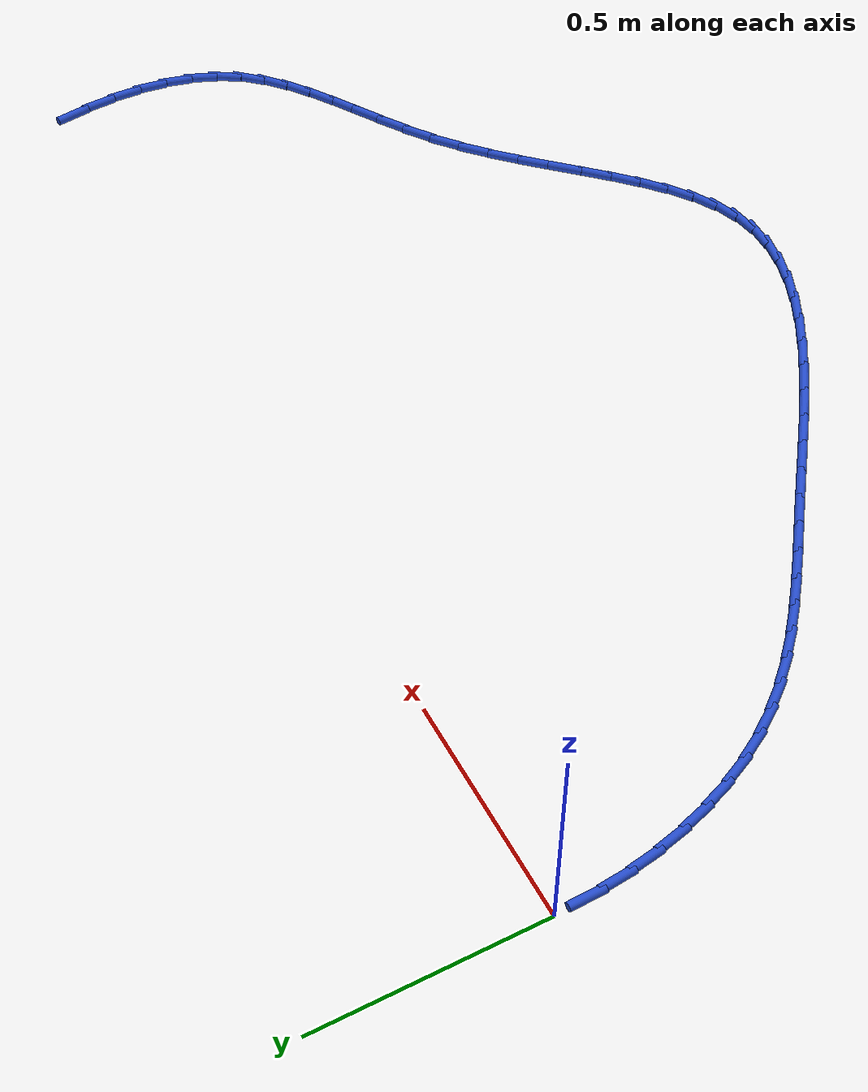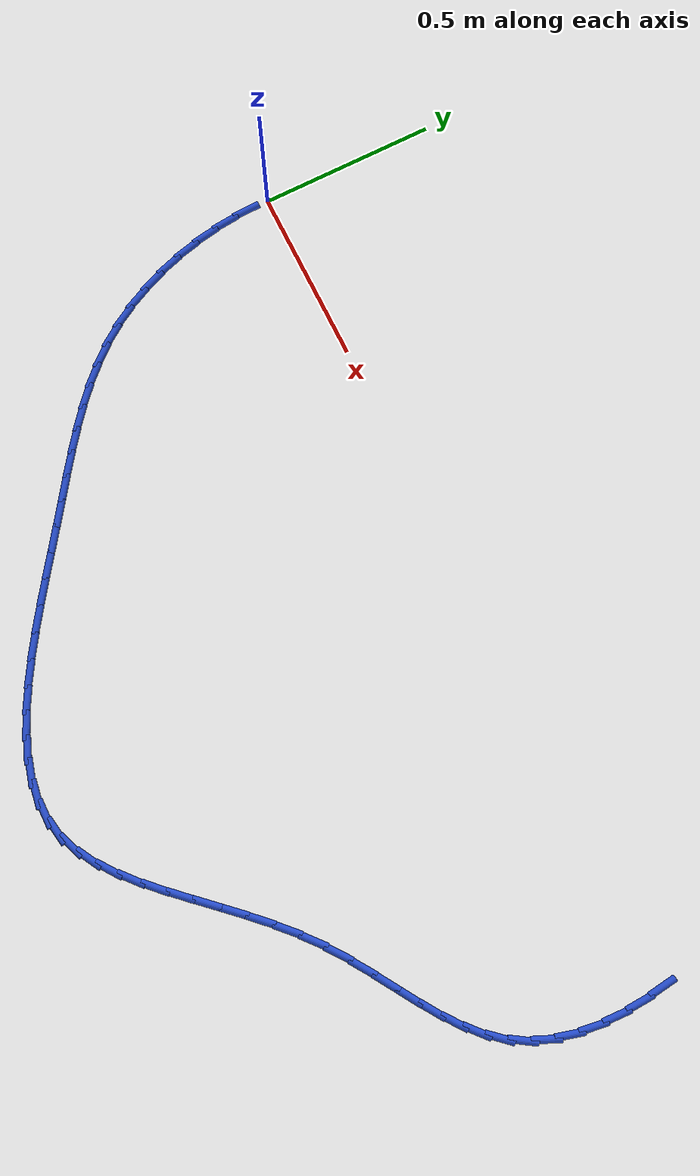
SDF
<sdf version="1.6">
 <world name="default">
  <model name="ground_plane">
   <static>1</static>
   <link name="link">
    <collision name="collision">
     <geometry><plane><normal>0 0 1</normal><size>100 100</size></plane></geometry>
     <surface><friction><ode><mu>100</mu><mu2>50</mu2></ode></friction></surface>
    </collision>
    <visual name="visual">
     <cast_shadows>0</cast_shadows>
     <geometry><plane><normal>0 0 1</normal><size>100 100</size></plane></geometry>
     <material>
      <script><uri>file://media/materials/scripts/gazebo.material</uri><name>Gazebo/WhiteGlow</name></script>
     </material>
    </visual>
   </link>
  </model>
  <model name="line">
   <link name="link_54">
    <pose>2.371682854689119 -0.04774600827914343 0.01 0 1.57 -1.451665395589997</pose>
    <collision name="collision">
     <geometry><cylinder><radius>0.01</radius><length>0.08</length></cylinder></geometry>
    </collision>
    <visual name="visual">
     <material>
      <script><name>Gazebo/Blue</name><uri>file://media/materials/scripts/gazebo.material</uri></script>
     </material>
     <geometry><cylinder><radius>0.01</radius><length>0.08</length></cylinder></geometry>
    </visual>
   </link>
   <link name="link_55">
    <pose>2.3799388379606223 -0.11671961058493745 0.01 0 1.57 -1.5286415477636637</pose>
    <collision name="collision">
     <geometry><cylinder><radius>0.01</radius><length>0.08</length></cylinder></geometry>
    </collision>
    <visual name="visual">
     <material>
      <script><name>Gazebo/Blue</name><uri>file://media/materials/scripts/gazebo.material</uri></script>
     </material>
     <geometry><cylinder><radius>0.01</radius><length>0.08</length></cylinder></geometry>
    </visual>
   </link>
   <link name="link_56">
    <pose>2.3827754528821576 -0.18397021756264856 0.01 0 1.57 1.523438531681051</pose>
    <collision name="collision">
     <geometry><cylinder><radius>0.01</radius><length>0.08</length></cylinder></geometry>
    </collision>
    <visual name="visual">
     <material>
      <script><name>Gazebo/Blue</name><uri>file://media/materials/scripts/gazebo.material</uri></script>
     </material>
     <geometry><cylinder><radius>0.01</radius><length>0.08</length></cylinder></geometry>
    </visual>
   </link>
   <link name="link_57">
    <pose>2.379700760778411 -0.2488464043236427 0.01 0 1.57 1.4187393260869767</pose>
    <collision name="collision">
     <geometry><cylinder><radius>0.01</radius><length>0.08</length></cylinder></geometry>
    </collision>
    <visual name="visual">
     <material>
      <script><name>Gazebo/Blue</name><uri>file://media/materials/scripts/gazebo.material</uri></script>
     </material>
     <geometry><cylinder><radius>0.01</radius><length>0.08</length></cylinder></geometry>
    </visual>
   </link>
   <link name="link_58">
    <pose>2.370222822974068 -0.3106967459792827 0.01 0 1.57 1.296438589700294</pose>
    <collision name="collision">
     <geometry><cylinder><radius>0.01</radius><length>0.08</length></cylinder></geometry>
    </collision>
    <visual name="visual">
     <material>
      <script><name>Gazebo/Blue</name><uri>file://media/materials/scripts/gazebo.material</uri></script>
     </material>
     <geometry><cylinder><radius>0.01</radius><length>0.08</length></cylinder></geometry>
    </visual>
   </link>
   <link name="link_59">
    <pose>2.3538497007938135 -0.3688698176409346 0.01 0 1.57 1.1552207023727814</pose>
    <collision name="collision">
     <geometry><cylinder><radius>0.01</radius><length>0.08</length></cylinder></geometry>
    </collision>
    <visual name="visual">
     <material>
      <script><name>Gazebo/Blue</name><uri>file://media/materials/scripts/gazebo.material</uri></script>
     </material>
     <geometry><cylinder><radius>0.01</radius><length>0.08</length></cylinder></geometry>
    </visual>
   </link>
   <link name="link_60">
    <pose>2.330089455562334 -0.4227141944199615 0.01 0 1.57 0.9964008051994019</pose>
    <collision name="collision">
     <geometry><cylinder><radius>0.01</radius><length>0.08</length></cylinder></geometry>
    </collision>
    <visual name="visual">
     <material>
      <script><name>Gazebo/Blue</name><uri>file://media/materials/scripts/gazebo.material</uri></script>
     </material>
     <geometry><cylinder><radius>0.01</radius><length>0.08</length></cylinder></geometry>
    </visual>
   </link>
   <link name="link_61">
    <pose>2.2984591489952986 -0.4715876767993241 0.01 0 1.57 0.8404315264468815</pose>
    <collision name="collision">
     <geometry><cylinder><radius>0.01</radius><length>0.08</length></cylinder></geometry>
    </collision>
    <visual name="visual">
     <material>
      <script><name>Gazebo/Blue</name><uri>file://media/materials/scripts/gazebo.material</uri></script>
     </material>
     <geometry><cylinder><radius>0.01</radius><length>0.08</length></cylinder></geometry>
    </visual>
   </link>
   <link name="link_62">
    <pose>2.259122569442553 -0.5155109579665403 0.01 0 1.57 0.7189034008675385</pose>
    <collision name="collision">
     <geometry><cylinder><radius>0.01</radius><length>0.08</length></cylinder></geometry>
    </collision>
    <visual name="visual">
     <material>
      <script><name>Gazebo/Blue</name><uri>file://media/materials/scripts/gazebo.material</uri></script>
     </material>
     <geometry><cylinder><radius>0.01</radius><length>0.08</length></cylinder></geometry>
    </visual>
   </link>
   <link name="link_63">
    <pose>2.213312636197558 -0.5556005868622178 0.01 0 1.57 0.6341746588240434</pose>
    <collision name="collision">
     <geometry><cylinder><radius>0.01</radius><length>0.08</length></cylinder></geometry>
    </collision>
    <visual name="visual">
     <material>
      <script><name>Gazebo/Blue</name><uri>file://media/materials/scripts/gazebo.material</uri></script>
     </material>
     <geometry><cylinder><radius>0.01</radius><length>0.08</length></cylinder></geometry>
    </visual>
   </link>
   <link name="link_64">
    <pose>2.1623625005812968 -0.5930758499304103 0.01 0 1.57 0.5826149642045421</pose>
    <collision name="collision">
     <geometry><cylinder><radius>0.01</radius><length>0.08</length></cylinder></geometry>
    </collision>
    <visual name="visual">
     <material>
      <script><name>Gazebo/Blue</name><uri>file://media/materials/scripts/gazebo.material</uri></script>
     </material>
     <geometry><cylinder><radius>0.01</radius><length>0.08</length></cylinder></geometry>
    </visual>
   </link>
   <link name="link_65">
    <pose>2.107605313914753 -0.629156033615173 0.01 0 1.57 0.5602932950707216</pose>
    <collision name="collision">
     <geometry><cylinder><radius>0.01</radius><length>0.08</length></cylinder></geometry>
    </collision>
    <visual name="visual">
     <material>
      <script><name>Gazebo/Blue</name><uri>file://media/materials/scripts/gazebo.material</uri></script>
     </material>
     <geometry><cylinder><radius>0.01</radius><length>0.08</length></cylinder></geometry>
    </visual>
   </link>
   <link name="link_66">
    <pose>2.0503742275189096 -0.665060424360561 0.01 0 1.57 0.5643132617719714</pose>
    <collision name="collision">
     <geometry><cylinder><radius>0.01</radius><length>0.08</length></cylinder></geometry>
    </collision>
    <visual name="visual">
     <material>
      <script><name>Gazebo/Blue</name><uri>file://media/materials/scripts/gazebo.material</uri></script>
     </material>
     <geometry><cylinder><radius>0.01</radius><length>0.08</length></cylinder></geometry>
    </visual>
   </link>
   <link name="link_67">
    <pose>1.9920023927147517 -0.7020083086106286 0.01 0 1.57 0.5930354939490794</pose>
    <collision name="collision">
     <geometry><cylinder><radius>0.01</radius><length>0.08</length></cylinder></geometry>
    </collision>
    <visual name="visual">
     <material>
      <script><name>Gazebo/Blue</name><uri>file://media/materials/scripts/gazebo.material</uri></script>
     </material>
     <geometry><cylinder><radius>0.01</radius><length>0.08</length></cylinder></geometry>
    </visual>
   </link>
   <link name="link_68">
    <pose>1.9338229608232613 -0.7412189728094306 0.01 0 1.57 0.6457804757705348</pose>
    <collision name="collision">
     <geometry><cylinder><radius>0.01</radius><length>0.08</length></cylinder></geometry>
    </collision>
    <visual name="visual">
     <material>
      <script><name>Gazebo/Blue</name><uri>file://media/materials/scripts/gazebo.material</uri></script>
     </material>
     <geometry><cylinder><radius>0.01</radius><length>0.08</length></cylinder></geometry>
    </visual>
   </link>
   <link name="link_69">
    <pose>1.877168990585148 -0.7839115700992716 0.01 0 1.57 0.7134534951227292</pose>
    <collision name="collision">
     <geometry><cylinder><radius>0.01</radius><length>0.08</length></cylinder></geometry>
    </collision>
    <visual name="visual">
     <material>
      <script><name>Gazebo/Blue</name><uri>file://media/materials/scripts/gazebo.material</uri></script>
     </material>
     <geometry><cylinder><radius>0.01</radius><length>0.08</length></cylinder></geometry>
    </visual>
   </link>
   <link name="link_70">
    <pose>1.823013103402799 -0.8307862777651959 0.01 0 1.57 0.7677336043055953</pose>
    <collision name="collision">
     <geometry><cylinder><radius>0.01</radius><length>0.08</length></cylinder></geometry>
    </collision>
    <visual name="visual">
     <material>
      <script><name>Gazebo/Blue</name><uri>file://media/materials/scripts/gazebo.material</uri></script>
     </material>
     <geometry><cylinder><radius>0.01</radius><length>0.08</length></cylinder></geometry>
    </visual>
   </link>
   <link name="link_71">
    <pose>1.771150615552825 -0.880848129798388 0.01 0 1.57 0.8039859806747545</pose>
    <collision name="collision">
     <geometry><cylinder><radius>0.01</radius><length>0.08</length></cylinder></geometry>
    </collision>
    <visual name="visual">
     <material>
      <script><name>Gazebo/Blue</name><uri>file://media/materials/scripts/gazebo.material</uri></script>
     </material>
     <geometry><cylinder><radius>0.01</radius><length>0.08</length></cylinder></geometry>
    </visual>
   </link>
   <link name="link_72">
    <pose>1.7211368581651645 -0.9327566174729458 0.01 0 1.57 0.8230437674841437</pose>
    <collision name="collision">
     <geometry><cylinder><radius>0.01</radius><length>0.08</length></cylinder></geometry>
    </collision>
    <visual name="visual">
     <material>
      <script><name>Gazebo/Blue</name><uri>file://media/materials/scripts/gazebo.material</uri></script>
     </material>
     <geometry><cylinder><radius>0.01</radius><length>0.08</length></cylinder></geometry>
    </visual>
   </link>
   <link name="link_73">
    <pose>1.6725271623697575 -0.9851712320629642 0.01 0 1.57 0.8249815127411171</pose>
    <collision name="collision">
     <geometry><cylinder><radius>0.01</radius><length>0.08</length></cylinder></geometry>
    </collision>
    <visual name="visual">
     <material>
      <script><name>Gazebo/Blue</name><uri>file://media/materials/scripts/gazebo.material</uri></script>
     </material>
     <geometry><cylinder><radius>0.01</radius><length>0.08</length></cylinder></geometry>
    </visual>
   </link>
   <link name="link_74">
    <pose>1.624876859296543 -1.0367514648425413 0.01 0 1.57 0.8089047232425843</pose>
    <collision name="collision">
     <geometry><cylinder><radius>0.01</radius><length>0.08</length></cylinder></geometry>
    </collision>
    <visual name="visual">
     <material>
      <script><name>Gazebo/Blue</name><uri>file://media/materials/scripts/gazebo.material</uri></script>
     </material>
     <geometry><cylinder><radius>0.01</radius><length>0.08</length></cylinder></geometry>
    </visual>
   </link>
   <link name="link_75">
    <pose>1.5777412800754602 -1.0861568070857717 0.01 0 1.57 0.7727521230376473</pose>
    <collision name="collision">
     <geometry><cylinder><radius>0.01</radius><length>0.08</length></cylinder></geometry>
    </collision>
    <visual name="visual">
     <material>
      <script><name>Gazebo/Blue</name><uri>file://media/materials/scripts/gazebo.material</uri></script>
     </material>
     <geometry><cylinder><radius>0.01</radius><length>0.08</length></cylinder></geometry>
    </visual>
   </link>
   <link name="link_76">
    <pose>1.530675755836448 -1.1320467500667535 0.01 0 1.57 0.7131178254735965</pose>
    <collision name="collision">
     <geometry><cylinder><radius>0.01</radius><length>0.08</length></cylinder></geometry>
    </collision>
    <visual name="visual">
     <material>
      <script><name>Gazebo/Blue</name><uri>file://media/materials/scripts/gazebo.material</uri></script>
     </material>
     <geometry><cylinder><radius>0.01</radius><length>0.08</length></cylinder></geometry>
    </visual>
   </link>
   <link name="link_77">
    <pose>1.4832356177094466 -1.1730807850595817 0.01 0 1.57 0.6252615598125411</pose>
    <collision name="collision">
     <geometry><cylinder><radius>0.01</radius><length>0.08</length></cylinder></geometry>
    </collision>
    <visual name="visual">
     <material>
      <script><name>Gazebo/Blue</name><uri>file://media/materials/scripts/gazebo.material</uri></script>
     </material>
     <geometry><cylinder><radius>0.01</radius><length>0.08</length></cylinder></geometry>
    </visual>
   </link>
   <link name="link_78">
    <pose>1.4349761968243944 -1.2079184033383545 0.01 0 1.57 0.5038168575081823</pose>
    <collision name="collision">
     <geometry><cylinder><radius>0.01</radius><length>0.08</length></cylinder></geometry>
    </collision>
    <visual name="visual">
     <material>
      <script><name>Gazebo/Blue</name><uri>file://media/materials/scripts/gazebo.material</uri></script>
     </material>
     <geometry><cylinder><radius>0.01</radius><length>0.08</length></cylinder></geometry>
    </visual>
   </link>
   <link name="link_79">
    <pose>1.3854528243112314 -1.2352190961771667 0.01 0 1.57 0.3452054720147642</pose>
    <collision name="collision">
     <geometry><cylinder><radius>0.01</radius><length>0.08</length></cylinder></geometry>
    </collision>
    <visual name="visual">
     <material>
      <script><name>Gazebo/Blue</name><uri>file://media/materials/scripts/gazebo.material</uri></script>
     </material>
     <geometry><cylinder><radius>0.01</radius><length>0.08</length></cylinder></geometry>
    </visual>
   </link>
   <link name="link_80">
    <pose>1.3342208312998958 -1.2536423548501154 0.01 0 1.57 0.15774924092937265</pose>
    <collision name="collision">
     <geometry><cylinder><radius>0.01</radius><length>0.08</length></cylinder></geometry>
    </collision>
    <visual name="visual">
     <material>
      <script><name>Gazebo/Blue</name><uri>file://media/materials/scripts/gazebo.material</uri></script>
     </material>
     <geometry><cylinder><radius>0.01</radius><length>0.08</length></cylinder></geometry>
    </visual>
   </link>
   <link name="link_81">
    <pose>1.2809208763064528 -1.2621208276750366 0.01 0 1.57 -0.018545470665986913</pose>
    <collision name="collision">
     <geometry><cylinder><radius>0.01</radius><length>0.08</length></cylinder></geometry>
    </collision>
    <visual name="visual">
     <material>
      <script><name>Gazebo/Blue</name><uri>file://media/materials/scripts/gazebo.material</uri></script>
     </material>
     <geometry><cylinder><radius>0.01</radius><length>0.08</length></cylinder></geometry>
    </visual>
   </link>
   <link name="link_82">
    <pose>1.2256649288883923 -1.2610959626249028 0.01 0 1.57 -0.1664980617199786</pose>
    <collision name="collision">
     <geometry><cylinder><radius>0.01</radius><length>0.08</length></cylinder></geometry>
    </collision>
    <visual name="visual">
     <material>
      <script><name>Gazebo/Blue</name><uri>file://media/materials/scripts/gazebo.material</uri></script>
     </material>
     <geometry><cylinder><radius>0.01</radius><length>0.08</length></cylinder></geometry>
    </visual>
   </link>
   <link name="link_83">
    <pose>1.16872679452205 -1.2515272901216006 0.01 0 1.57 -0.285921842583201</pose>
    <collision name="collision">
     <geometry><cylinder><radius>0.01</radius><length>0.08</length></cylinder></geometry>
    </collision>
    <visual name="visual">
     <material>
      <script><name>Gazebo/Blue</name><uri>file://media/materials/scripts/gazebo.material</uri></script>
     </material>
     <geometry><cylinder><radius>0.01</radius><length>0.08</length></cylinder></geometry>
    </visual>
   </link>
   <link name="link_84">
    <pose>1.1103804248843103 -1.234374808616222 0.01 0 1.57 -0.380274909284807</pose>
    <collision name="collision">
     <geometry><cylinder><radius>0.01</radius><length>0.08</length></cylinder></geometry>
    </collision>
    <visual name="visual">
     <material>
      <script><name>Gazebo/Blue</name><uri>file://media/materials/scripts/gazebo.material</uri></script>
     </material>
     <geometry><cylinder><radius>0.01</radius><length>0.08</length></cylinder></geometry>
    </visual>
   </link>
   <link name="link_85">
    <pose>1.0508997716520525 -1.2105985165598574 0.01 0 1.57 -0.45391732289194625</pose>
    <collision name="collision">
     <geometry><cylinder><radius>0.01</radius><length>0.08</length></cylinder></geometry>
    </collision>
    <visual name="visual">
     <material>
      <script><name>Gazebo/Blue</name><uri>file://media/materials/scripts/gazebo.material</uri></script>
     </material>
     <geometry><cylinder><radius>0.01</radius><length>0.08</length></cylinder></geometry>
    </visual>
   </link>
   <link name="link_86">
    <pose>0.9905587865021591 -1.181158412403598 0.01 0 1.57 -0.5107955525535389</pose>
    <collision name="collision">
     <geometry><cylinder><radius>0.01</radius><length>0.08</length></cylinder></geometry>
    </collision>
    <visual name="visual">
     <material>
      <script><name>Gazebo/Blue</name><uri>file://media/materials/scripts/gazebo.material</uri></script>
     </material>
     <geometry><cylinder><radius>0.01</radius><length>0.08</length></cylinder></geometry>
    </visual>
   </link>
   <link name="link_87">
    <pose>0.9296314211115108 -1.147014494598535 0.01 0 1.57 -0.5540404689363494</pose>
    <collision name="collision">
     <geometry><cylinder><radius>0.01</radius><length>0.08</length></cylinder></geometry>
    </collision>
    <visual name="visual">
     <material>
      <script><name>Gazebo/Blue</name><uri>file://media/materials/scripts/gazebo.material</uri></script>
     </material>
     <geometry><cylinder><radius>0.01</radius><length>0.08</length></cylinder></geometry>
    </visual>
   </link>
   <link name="link_88">
    <pose>0.8683916271569907 -1.1091267615957598 0.01 0 1.57 -0.5859591012196388</pose>
    <collision name="collision">
     <geometry><cylinder><radius>0.01</radius><length>0.08</length></cylinder></geometry>
    </collision>
    <visual name="visual">
     <material>
      <script><name>Gazebo/Blue</name><uri>file://media/materials/scripts/gazebo.material</uri></script>
     </material>
     <geometry><cylinder><radius>0.01</radius><length>0.08</length></cylinder></geometry>
    </visual>
   </link>
   <link name="link_89">
    <pose>0.8071133563154786 -1.0684552118463624 0.01 0 1.57 -0.6081420914696933</pose>
    <collision name="collision">
     <geometry><cylinder><radius>0.01</radius><length>0.08</length></cylinder></geometry>
    </collision>
    <visual name="visual">
     <material>
      <script><name>Gazebo/Blue</name><uri>file://media/materials/scripts/gazebo.material</uri></script>
     </material>
     <geometry><cylinder><radius>0.01</radius><length>0.08</length></cylinder></geometry>
    </visual>
   </link>
   <link name="link_90">
    <pose>0.7460705602638579 -1.025959843801435 0.01 0 1.57 -0.6215725581780963</pose>
    <collision name="collision">
     <geometry><cylinder><radius>0.01</radius><length>0.08</length></cylinder></geometry>
    </collision>
    <visual name="visual">
     <material>
      <script><name>Gazebo/Blue</name><uri>file://media/materials/scripts/gazebo.material</uri></script>
     </material>
     <geometry><cylinder><radius>0.01</radius><length>0.08</length></cylinder></geometry>
    </visual>
   </link>
   <link name="link_91">
    <pose>0.6855371906790081 -0.9826006559120678 0.01 0 1.57 -0.6266965027248783</pose>
    <collision name="collision">
     <geometry><cylinder><radius>0.01</radius><length>0.08</length></cylinder></geometry>
    </collision>
    <visual name="visual">
     <material>
      <script><name>Gazebo/Blue</name><uri>file://media/materials/scripts/gazebo.material</uri></script>
     </material>
     <geometry><cylinder><radius>0.01</radius><length>0.08</length></cylinder></geometry>
    </visual>
   </link>
   <link name="link_92">
    <pose>0.6257871992378129 -0.9393376466293532 0.01 0 1.57 -0.6235237444594838</pose>
    <collision name="collision">
     <geometry><cylinder><radius>0.01</radius><length>0.08</length></cylinder></geometry>
    </collision>
    <visual name="visual">
     <material>
      <script><name>Gazebo/Blue</name><uri>file://media/materials/scripts/gazebo.material</uri></script>
     </material>
     <geometry><cylinder><radius>0.01</radius><length>0.08</length></cylinder></geometry>
    </visual>
   </link>
   <link name="link_93">
    <pose>0.5670946865388907 -0.8971235192301354 0.01 0 1.57 -0.6180791356316279</pose>
    <collision name="collision">
     <geometry><cylinder><radius>0.01</radius><length>0.08</length></cylinder></geometry>
    </collision>
    <visual name="visual">
     <material>
      <script><name>Gazebo/Blue</name><uri>file://media/materials/scripts/gazebo.material</uri></script>
     </material>
     <geometry><cylinder><radius>0.01</radius><length>0.08</length></cylinder></geometry>
    </visual>
   </link>
   <link name="link_94">
    <pose>0.5097452594287596 -0.8563473246726967 0.01 0 1.57 -0.6216461037044136</pose>
    <collision name="collision">
     <geometry><cylinder><radius>0.01</radius><length>0.08</length></cylinder></geometry>
    </collision>
    <visual name="visual">
     <material>
      <script><name>Gazebo/Blue</name><uri>file://media/materials/scripts/gazebo.material</uri></script>
     </material>
     <geometry><cylinder><radius>0.01</radius><length>0.08</length></cylinder></geometry>
    </visual>
   </link>
   <link name="link_95">
    <pose>0.45404401967048025 -0.8164431236343769 0.01 0 1.57 -0.6360899077219822</pose>
    <collision name="collision">
     <geometry><cylinder><radius>0.01</radius><length>0.08</length></cylinder></geometry>
    </collision>
    <visual name="visual">
     <material>
      <script><name>Gazebo/Blue</name><uri>file://media/materials/scripts/gazebo.material</uri></script>
     </material>
     <geometry><cylinder><radius>0.01</radius><length>0.08</length></cylinder></geometry>
    </visual>
   </link>
   <link name="link_96">
    <pose>0.40029795628159115 -0.776752526554156 0.01 0 1.57 -0.6621598619933771</pose>
    <collision name="collision">
     <geometry><cylinder><radius>0.01</radius><length>0.08</length></cylinder></geometry>
    </collision>
    <visual name="visual">
     <material>
      <script><name>Gazebo/Blue</name><uri>file://media/materials/scripts/gazebo.material</uri></script>
     </material>
     <geometry><cylinder><radius>0.01</radius><length>0.08</length></cylinder></geometry>
    </visual>
   </link>
   <link name="link_97">
    <pose>0.3488140582796292 -0.7366171438710127 0.01 0 1.57 -0.7004571178326624</pose>
    <collision name="collision">
     <geometry><cylinder><radius>0.01</radius><length>0.08</length></cylinder></geometry>
    </collision>
    <visual name="visual">
     <material>
      <script><name>Gazebo/Blue</name><uri>file://media/materials/scripts/gazebo.material</uri></script>
     </material>
     <geometry><cylinder><radius>0.01</radius><length>0.08</length></cylinder></geometry>
    </visual>
   </link>
   <link name="link_98">
    <pose>0.29989931468213077 -0.6953785860239257 0.01 0 1.57 -0.7512860506289736</pose>
    <collision name="collision">
     <geometry><cylinder><radius>0.01</radius><length>0.08</length></cylinder></geometry>
    </collision>
    <visual name="visual">
     <material>
      <script><name>Gazebo/Blue</name><uri>file://media/materials/scripts/gazebo.material</uri></script>
     </material>
     <geometry><cylinder><radius>0.01</radius><length>0.08</length></cylinder></geometry>
    </visual>
   </link>
   <link name="link_99">
    <pose>0.2538607145066343 -0.6523784634518744 0.01 0 1.57 -0.8144423109841612</pose>
    <collision name="collision">
     <geometry><cylinder><radius>0.01</radius><length>0.08</length></cylinder></geometry>
    </collision>
    <visual name="visual">
     <material>
      <script><name>Gazebo/Blue</name><uri>file://media/materials/scripts/gazebo.material</uri></script>
     </material>
     <geometry><cylinder><radius>0.01</radius><length>0.08</length></cylinder></geometry>
    </visual>
   </link>
   <link name="link_100">
    <pose>0.21100524677067595 -0.6069583865938373 0.01 0 1.57 -0.8889720579516112</pose>
    <collision name="collision">
     <geometry><cylinder><radius>0.01</radius><length>0.08</length></cylinder></geometry>
    </collision>
    <visual name="visual">
     <material>
      <script><name>Gazebo/Blue</name><uri>file://media/materials/scripts/gazebo.material</uri></script>
     </material>
     <geometry><cylinder><radius>0.01</radius><length>0.08</length></cylinder></geometry>
    </visual>
   </link>
   <link name="link_101">
    <pose>0.17163990049179398 -0.5584599658887944 0.01 0 1.57 -0.9723744789153648</pose>
    <collision name="collision">
     <geometry><cylinder><radius>0.01</radius><length>0.08</length></cylinder></geometry>
    </collision>
    <visual name="visual">
     <material>
      <script><name>Gazebo/Blue</name><uri>file://media/materials/scripts/gazebo.material</uri></script>
     </material>
     <geometry><cylinder><radius>0.01</radius><length>0.08</length></cylinder></geometry>
    </visual>
   </link>
   <link name="link_102">
    <pose>0.1360610272144684 -0.5062779496406565 0.01 0 1.57 -1.0552570734584026</pose>
    <collision name="collision">
     <geometry><cylinder><radius>0.01</radius><length>0.08</length></cylinder></geometry>
    </collision>
    <visual name="visual">
     <material>
      <script><name>Gazebo/Blue</name><uri>file://media/materials/scripts/gazebo.material</uri></script>
     </material>
     <geometry><cylinder><radius>0.01</radius><length>0.08</length></cylinder></geometry>
    </visual>
   </link>
   <link name="link_103">
    <pose>0.10443356947694009 -0.4504635196867107 0.01 0 1.57 -1.1329399279283978</pose>
    <collision name="collision">
     <geometry><cylinder><radius>0.01</radius><length>0.08</length></cylinder></geometry>
    </collision>
    <visual name="visual">
     <material>
      <script><name>Gazebo/Blue</name><uri>file://media/materials/scripts/gazebo.material</uri></script>
     </material>
     <geometry><cylinder><radius>0.01</radius><length>0.08</length></cylinder></geometry>
    </visual>
   </link>
   <link name="link_104">
    <pose>0.07683385938243133 -0.39151049770009827 0.01 0 1.57 -1.2063265853117133</pose>
    <collision name="collision">
     <geometry><cylinder><radius>0.01</radius><length>0.08</length></cylinder></geometry>
    </collision>
    <visual name="visual">
     <material>
      <script><name>Gazebo/Blue</name><uri>file://media/materials/scripts/gazebo.material</uri></script>
     </material>
     <geometry><cylinder><radius>0.01</radius><length>0.08</length></cylinder></geometry>
    </visual>
   </link>
   <link name="link_105">
    <pose>0.05333657015739279 -0.3299209920184195 0.01 0 1.57 -1.2764190717788795</pose>
    <collision name="collision">
     <geometry><cylinder><radius>0.01</radius><length>0.08</length></cylinder></geometry>
    </collision>
    <visual name="visual">
     <material>
      <script><name>Gazebo/Blue</name><uri>file://media/materials/scripts/gazebo.material</uri></script>
     </material>
     <geometry><cylinder><radius>0.01</radius><length>0.08</length></cylinder></geometry>
    </visual>
   </link>
   <link name="link_106">
    <pose>0.03401637502827395 -0.2661971109792727 0.01 0 1.57 -1.3441973844725814</pose>
    <collision name="collision">
     <geometry><cylinder><radius>0.01</radius><length>0.08</length></cylinder></geometry>
    </collision>
    <visual name="visual">
     <material>
      <script><name>Gazebo/Blue</name><uri>file://media/materials/scripts/gazebo.material</uri></script>
     </material>
     <geometry><cylinder><radius>0.01</radius><length>0.08</length></cylinder></geometry>
    </visual>
   </link>
   <link name="link_107">
    <pose>0.018947947221525343 -0.2008409629202585 0.01 0 1.57 -1.4106136390447521</pose>
    <collision name="collision">
     <geometry><cylinder><radius>0.01</radius><length>0.08</length></cylinder></geometry>
    </collision>
    <visual name="visual">
     <material>
      <script><name>Gazebo/Blue</name><uri>file://media/materials/scripts/gazebo.material</uri></script>
     </material>
     <geometry><cylinder><radius>0.01</radius><length>0.08</length></cylinder></geometry>
    </visual>
   </link>
   <link name="link_108">
    <pose>0.00820595996359665 -0.1343546561789749 0.01 0 1.57 -1.4765972984948148</pose>
    <collision name="collision">
     <geometry><cylinder><radius>0.01</radius><length>0.08</length></cylinder></geometry>
    </collision>
    <visual name="visual">
     <material>
      <script><name>Gazebo/Blue</name><uri>file://media/materials/scripts/gazebo.material</uri></script>
     </material>
     <geometry><cylinder><radius>0.01</radius><length>0.08</length></cylinder></geometry>
    </visual>
   </link>
   <link name="link_109">
    <pose>0.001865086480938213 -0.06724029909302286 0.01 0 1.57 -1.5430658079076356</pose>
    <collision name="collision">
     <geometry><cylinder><radius>0.01</radius><length>0.08</length></cylinder></geometry>
    </collision>
    <visual name="visual">
     <material>
      <script><name>Gazebo/Blue</name><uri>file://media/materials/scripts/gazebo.material</uri></script>
     </material>
     <geometry><cylinder><radius>0.01</radius><length>0.08</length></cylinder></geometry>
    </visual>
   </link>
  </model>
 </world>
</sdf>
